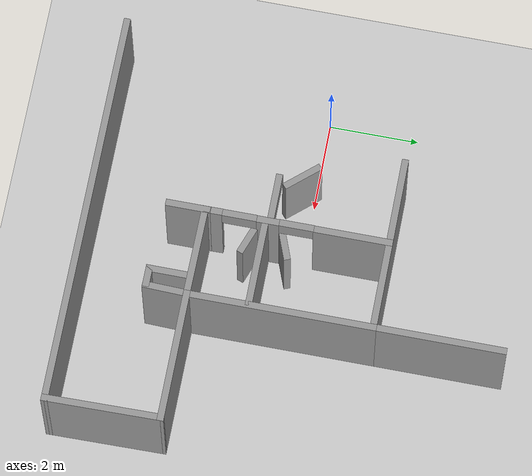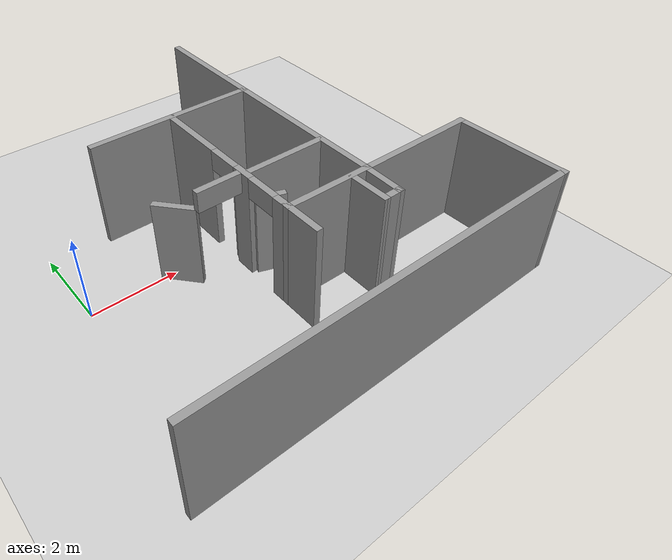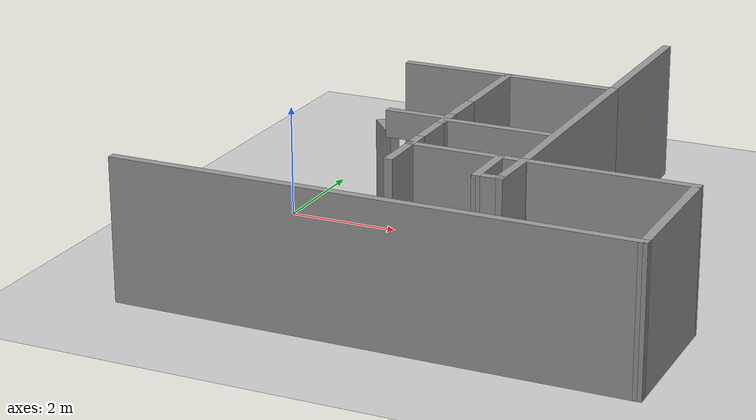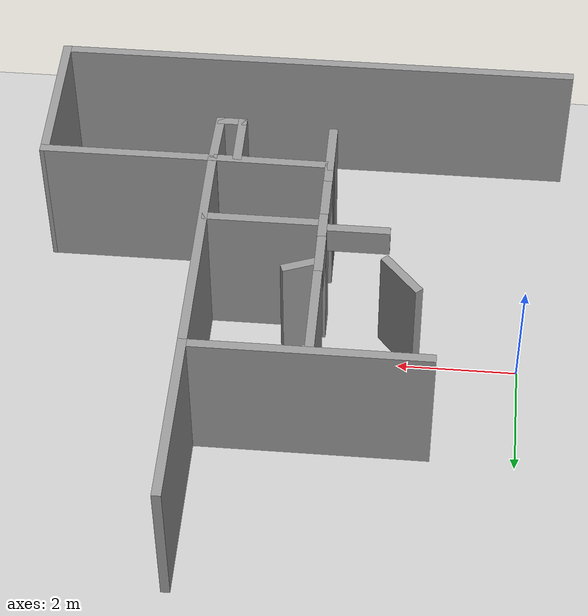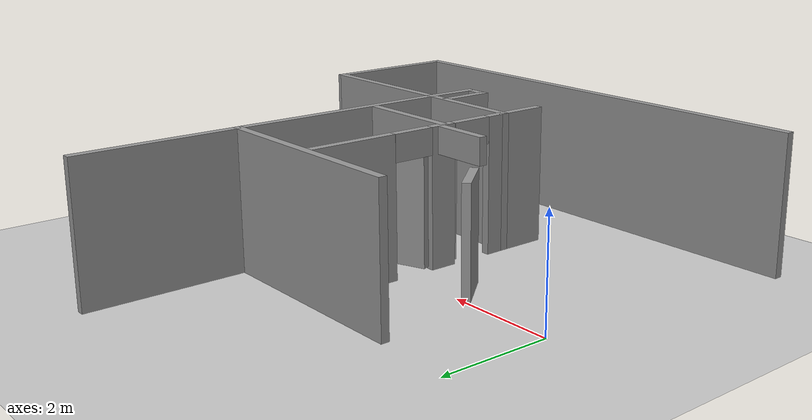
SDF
<sdf version="1.6">
 <world name="default">
  <model name="demo_clean">
   <static>1</static>
   <link name="Wall_10">
    <collision name="Wall_10_Collision">
     <geometry><box><size>3 0.15 2.5</size></box></geometry>
     <pose>0 0 1.25 0 -0 0</pose>
     <surface>
      <friction>
       <ode><mu>1.0</mu><mu2>1.0</mu2><fdir1>0 0 0</fdir1><slip1>0.0</slip1><slip2>0.0</slip2></ode>
       <torsional>
        <coefficient>1.0</coefficient>
        <patch_radius>0.0</patch_radius>
        <surface_radius>0.0</surface_radius>
        <use_patch_radius>1</use_patch_radius>
        <ode><slip>0.0</slip></ode>
       </torsional>
      </friction>
      <bounce><restitution_coefficient>0.0</restitution_coefficient><threshold>1000000.0</threshold></bounce>
      <contact>
       <collide_without_contact>0</collide_without_contact>
       <collide_without_contact_bitmask>1</collide_without_contact_bitmask>
       <collide_bitmask>1</collide_bitmask>
       <ode>
        <soft_cfm>0.0</soft_cfm>
        <soft_erp>0.2</soft_erp>
        <kp>10000000000000.0</kp>
        <kd>1.0</kd>
        <max_vel>0.01</max_vel>
        <min_depth>0.0</min_depth>
       </ode>
       <bullet>
        <split_impulse>1</split_impulse>
        <split_impulse_penetration_threshold>-0.01</split_impulse_penetration_threshold>
        <soft_cfm>0.0</soft_cfm>
        <soft_erp>0.2</soft_erp>
        <kp>10000000000000.0</kp>
        <kd>1.0</kd>
       </bullet>
      </contact>
     </surface>
    </collision>
    <visual name="Wall_10_Visual">
     <geometry><box><size>3 0.15 2.5</size></box></geometry>
     <material>
      <script><name>Gazebo/Grey</name><uri>file://media/materials/scripts/gazebo.material</uri></script>
      <ambient>1 1 1 1</ambient>
      <shader type="pixel"><normal_map>default</normal_map></shader>
     </material>
     <pose>0 0 1.25 0 -0 0</pose>
     <transparency>0.0</transparency>
    </visual>
    <pose>5.30351 3.31618 0 0 0 -1.5708</pose>
   </link>
   <link name="Wall_11">
    <collision name="Wall_11_Collision">
     <geometry><box><size>4 0.15 2.5</size></box></geometry>
     <pose>0 0 1.25 0 -0 0</pose>
     <surface>
      <friction>
       <ode><mu>1.0</mu><mu2>1.0</mu2><fdir1>0 0 0</fdir1><slip1>0.0</slip1><slip2>0.0</slip2></ode>
       <torsional>
        <coefficient>1.0</coefficient>
        <patch_radius>0.0</patch_radius>
        <surface_radius>0.0</surface_radius>
        <use_patch_radius>1</use_patch_radius>
        <ode><slip>0.0</slip></ode>
       </torsional>
      </friction>
      <bounce><restitution_coefficient>0.0</restitution_coefficient><threshold>1000000.0</threshold></bounce>
      <contact>
       <collide_without_contact>0</collide_without_contact>
       <collide_without_contact_bitmask>1</collide_without_contact_bitmask>
       <collide_bitmask>1</collide_bitmask>
       <ode>
        <soft_cfm>0.0</soft_cfm>
        <soft_erp>0.2</soft_erp>
        <kp>10000000000000.0</kp>
        <kd>1.0</kd>
        <max_vel>0.01</max_vel>
        <min_depth>0.0</min_depth>
       </ode>
       <bullet>
        <split_impulse>1</split_impulse>
        <split_impulse_penetration_threshold>-0.01</split_impulse_penetration_threshold>
        <soft_cfm>0.0</soft_cfm>
        <soft_erp>0.2</soft_erp>
        <kp>10000000000000.0</kp>
        <kd>1.0</kd>
       </bullet>
      </contact>
     </surface>
    </collision>
    <visual name="Wall_11_Visual">
     <geometry><box><size>4 0.15 2.5</size></box></geometry>
     <material>
      <script><name>Gazebo/Grey</name><uri>file://media/materials/scripts/gazebo.material</uri></script>
      <ambient>1 1 1 1</ambient>
      <shader type="pixel"><normal_map>default</normal_map></shader>
     </material>
     <pose>0 0 1.25 0 -0 0</pose>
     <transparency>0.0</transparency>
    </visual>
    <pose>3.37851 1.89118 0 0 -0 3.14159</pose>
   </link>
   <link name="Wall_13">
    <collision name="Wall_13_Collision">
     <geometry><box><size>4.25 0.15 2.5</size></box></geometry>
     <pose>0 0 1.25 0 -0 0</pose>
     <surface>
      <friction>
       <ode><mu>1.0</mu><mu2>1.0</mu2><fdir1>0 0 0</fdir1><slip1>0.0</slip1><slip2>0.0</slip2></ode>
       <torsional>
        <coefficient>1.0</coefficient>
        <patch_radius>0.0</patch_radius>
        <surface_radius>0.0</surface_radius>
        <use_patch_radius>1</use_patch_radius>
        <ode><slip>0.0</slip></ode>
       </torsional>
      </friction>
      <bounce><restitution_coefficient>0.0</restitution_coefficient><threshold>1000000.0</threshold></bounce>
      <contact>
       <collide_without_contact>0</collide_without_contact>
       <collide_without_contact_bitmask>1</collide_without_contact_bitmask>
       <collide_bitmask>1</collide_bitmask>
       <ode>
        <soft_cfm>0.0</soft_cfm>
        <soft_erp>0.2</soft_erp>
        <kp>10000000000000.0</kp>
        <kd>1.0</kd>
        <max_vel>0.01</max_vel>
        <min_depth>0.0</min_depth>
       </ode>
       <bullet>
        <split_impulse>1</split_impulse>
        <split_impulse_penetration_threshold>-0.01</split_impulse_penetration_threshold>
        <soft_cfm>0.0</soft_cfm>
        <soft_erp>0.2</soft_erp>
        <kp>10000000000000.0</kp>
        <kd>1.0</kd>
       </bullet>
      </contact>
     </surface>
    </collision>
    <visual name="Wall_13_Visual">
     <geometry><box><size>4.25 0.15 2.5</size></box></geometry>
     <material>
      <script><name>Gazebo/Grey</name><uri>file://media/materials/scripts/gazebo.material</uri></script>
      <ambient>1 1 1 1</ambient>
      <shader type="pixel"><normal_map>default</normal_map></shader>
     </material>
     <pose>0 0 1.25 0 -0 0</pose>
     <transparency>0.0</transparency>
    </visual>
    <pose>5.30351 -0.158824 0 0 0 -1.5708</pose>
   </link>
   <link name="Wall_14">
    <collision name="Wall_14_Collision">
     <geometry><box><size>3 0.15 2.5</size></box></geometry>
     <pose>0 0 1.25 0 -0 0</pose>
     <surface>
      <friction>
       <ode><mu>1.0</mu><mu2>1.0</mu2><fdir1>0 0 0</fdir1><slip1>0.0</slip1><slip2>0.0</slip2></ode>
       <torsional>
        <coefficient>1.0</coefficient>
        <patch_radius>0.0</patch_radius>
        <surface_radius>0.0</surface_radius>
        <use_patch_radius>1</use_patch_radius>
        <ode><slip>0.0</slip></ode>
       </torsional>
      </friction>
      <bounce><restitution_coefficient>0.0</restitution_coefficient><threshold>1000000.0</threshold></bounce>
      <contact>
       <collide_without_contact>0</collide_without_contact>
       <collide_without_contact_bitmask>1</collide_without_contact_bitmask>
       <collide_bitmask>1</collide_bitmask>
       <ode>
        <soft_cfm>0.0</soft_cfm>
        <soft_erp>0.2</soft_erp>
        <kp>10000000000000.0</kp>
        <kd>1.0</kd>
        <max_vel>0.01</max_vel>
        <min_depth>0.0</min_depth>
       </ode>
       <bullet>
        <split_impulse>1</split_impulse>
        <split_impulse_penetration_threshold>-0.01</split_impulse_penetration_threshold>
        <soft_cfm>0.0</soft_cfm>
        <soft_erp>0.2</soft_erp>
        <kp>10000000000000.0</kp>
        <kd>1.0</kd>
       </bullet>
      </contact>
     </surface>
    </collision>
    <visual name="Wall_14_Visual">
     <geometry><box><size>3 0.15 2.5</size></box></geometry>
     <material>
      <script><name>Gazebo/Grey</name><uri>file://media/materials/scripts/gazebo.material</uri></script>
      <ambient>1 1 1 1</ambient>
      <shader type="pixel"><normal_map>default</normal_map></shader>
     </material>
     <pose>0 0 1.25 0 -0 0</pose>
     <transparency>0.0</transparency>
    </visual>
    <pose>6.72851 -2.20882 0 0 -0 0</pose>
   </link>
   <link name="Wall_15">
    <collision name="Wall_15_Collision">
     <geometry><box><size>2.6816 0.15 2.5</size></box></geometry>
     <pose>0 0 1.25 0 -0 0</pose>
     <surface>
      <friction>
       <ode><mu>1.0</mu><mu2>1.0</mu2><fdir1>0 0 0</fdir1><slip1>0.0</slip1><slip2>0.0</slip2></ode>
       <torsional>
        <coefficient>1.0</coefficient>
        <patch_radius>0.0</patch_radius>
        <surface_radius>0.0</surface_radius>
        <use_patch_radius>1</use_patch_radius>
        <ode><slip>0.0</slip></ode>
       </torsional>
      </friction>
      <bounce><restitution_coefficient>0.0</restitution_coefficient><threshold>1000000.0</threshold></bounce>
      <contact>
       <collide_without_contact>0</collide_without_contact>
       <collide_without_contact_bitmask>1</collide_without_contact_bitmask>
       <collide_bitmask>1</collide_bitmask>
       <ode>
        <soft_cfm>0.0</soft_cfm>
        <soft_erp>0.2</soft_erp>
        <kp>10000000000000.0</kp>
        <kd>1.0</kd>
        <max_vel>0.01</max_vel>
        <min_depth>0.0</min_depth>
       </ode>
       <bullet>
        <split_impulse>1</split_impulse>
        <split_impulse_penetration_threshold>-0.01</split_impulse_penetration_threshold>
        <soft_cfm>0.0</soft_cfm>
        <soft_erp>0.2</soft_erp>
        <kp>10000000000000.0</kp>
        <kd>1.0</kd>
       </bullet>
      </contact>
     </surface>
    </collision>
    <visual name="Wall_15_Visual">
     <geometry><box><size>2.6816 0.15 2.5</size></box></geometry>
     <material>
      <script><name>Gazebo/Grey</name><uri>file://media/materials/scripts/gazebo.material</uri></script>
      <ambient>1 1 1 1</ambient>
      <shader type="pixel"><normal_map>default</normal_map></shader>
     </material>
     <pose>0 0 1.25 0 -0 0</pose>
     <transparency>0.0</transparency>
    </visual>
    <pose>8.16988 -3.47452 0 0 0 -1.55787</pose>
   </link>
   <link name="Wall_16">
    <collision name="Wall_16_Collision">
     <geometry><box><size>9 0.15 2.5</size></box></geometry>
     <pose>0 0 1.25 0 -0 0</pose>
     <surface>
      <friction>
       <ode><mu>1.0</mu><mu2>1.0</mu2><fdir1>0 0 0</fdir1><slip1>0.0</slip1><slip2>0.0</slip2></ode>
       <torsional>
        <coefficient>1.0</coefficient>
        <patch_radius>0.0</patch_radius>
        <surface_radius>0.0</surface_radius>
        <use_patch_radius>1</use_patch_radius>
        <ode><slip>0.0</slip></ode>
       </torsional>
      </friction>
      <bounce><restitution_coefficient>0.0</restitution_coefficient><threshold>1000000.0</threshold></bounce>
      <contact>
       <collide_without_contact>0</collide_without_contact>
       <collide_without_contact_bitmask>1</collide_without_contact_bitmask>
       <collide_bitmask>1</collide_bitmask>
       <ode>
        <soft_cfm>0.0</soft_cfm>
        <soft_erp>0.2</soft_erp>
        <kp>10000000000000.0</kp>
        <kd>1.0</kd>
        <max_vel>0.01</max_vel>
        <min_depth>0.0</min_depth>
       </ode>
       <bullet>
        <split_impulse>1</split_impulse>
        <split_impulse_penetration_threshold>-0.01</split_impulse_penetration_threshold>
        <soft_cfm>0.0</soft_cfm>
        <soft_erp>0.2</soft_erp>
        <kp>10000000000000.0</kp>
        <kd>1.0</kd>
       </bullet>
      </contact>
     </surface>
    </collision>
    <visual name="Wall_16_Visual">
     <geometry><box><size>9 0.15 2.5</size></box></geometry>
     <material>
      <script><name>Gazebo/Grey</name><uri>file://media/materials/scripts/gazebo.material</uri></script>
      <ambient>1 1 1 1</ambient>
      <shader type="pixel"><normal_map>default</normal_map></shader>
     </material>
     <pose>0 0 1.25 0 -0 0</pose>
     <transparency>0.0</transparency>
    </visual>
    <pose>3.76125 -4.74021 0 0 -0 3.14159</pose>
   </link>
   <link name="Wall_21_clone_0_clone_0_clone_clone_clone_clone">
    <gravity>0</gravity>
    <collision name="Wall_21_Collision">
     <geometry><box><size>0.924919 0.15 1.96033</size></box></geometry>
     <pose>0 0 1.25 0 -0 0</pose>
     <surface>
      <friction>
       <ode><mu>1.0</mu><mu2>1.0</mu2><fdir1>0 0 0</fdir1><slip1>0.0</slip1><slip2>0.0</slip2></ode>
       <torsional>
        <coefficient>1.0</coefficient>
        <patch_radius>0.0</patch_radius>
        <surface_radius>0.0</surface_radius>
        <use_patch_radius>1</use_patch_radius>
        <ode><slip>0.0</slip></ode>
       </torsional>
      </friction>
      <bounce><restitution_coefficient>0.0</restitution_coefficient><threshold>1000000.0</threshold></bounce>
      <contact>
       <collide_without_contact>0</collide_without_contact>
       <collide_without_contact_bitmask>1</collide_without_contact_bitmask>
       <collide_bitmask>1</collide_bitmask>
       <ode>
        <soft_cfm>0.0</soft_cfm>
        <soft_erp>0.2</soft_erp>
        <kp>10000000000000.0</kp>
        <kd>1.0</kd>
        <max_vel>0.01</max_vel>
        <min_depth>0.0</min_depth>
       </ode>
       <bullet>
        <split_impulse>1</split_impulse>
        <split_impulse_penetration_threshold>-0.01</split_impulse_penetration_threshold>
        <soft_cfm>0.0</soft_cfm>
        <soft_erp>0.2</soft_erp>
        <kp>10000000000000.0</kp>
        <kd>1.0</kd>
       </bullet>
      </contact>
     </surface>
    </collision>
    <visual name="Wall_21_Visual">
     <geometry><box><size>0.924919 0.15 1.96033</size></box></geometry>
     <material>
      <script><name>Gazebo/Grey</name><uri>file://media/materials/scripts/gazebo.material</uri></script>
      <ambient>1 1 1 1</ambient>
      <shader type="pixel"><normal_map>__default__</normal_map></shader>
      <diffuse>0.7 0.7 0.7 1.0</diffuse>
      <specular>0.01 0.01 0.01 1</specular>
      <emissive>0 0 0 1</emissive>
     </material>
     <pose>0 0 1.25 0 -0 0</pose>
     <transparency>0.0</transparency>
    </visual>
    <inertial>
     <inertia><ixx>0.0</ixx><iyy>0.0</iyy><izz>0.0</izz><ixy>0.0</ixy><ixz>0.0</ixz><iyz>0.0</iyz></inertia>
     <mass>1.0</mass>
    </inertial>
    <pose>2.0073 -0.280742 -0.23202 0 -0 2.28452</pose>
   </link>
   <link name="Wall_21_clone_0_clone_0_clone_clone_clone_clone_clone_clone_clone_clone">
    <gravity>0</gravity>
    <collision name="Wall_21_Collision">
     <geometry><box><size>0.663949 0.15 1.96033</size></box></geometry>
     <pose>0 0 1.25 0 -0 0</pose>
     <surface>
      <friction>
       <ode><mu>1.0</mu><mu2>1.0</mu2><fdir1>0 0 0</fdir1><slip1>0.0</slip1><slip2>0.0</slip2></ode>
       <torsional>
        <coefficient>1.0</coefficient>
        <patch_radius>0.0</patch_radius>
        <surface_radius>0.0</surface_radius>
        <use_patch_radius>1</use_patch_radius>
        <ode><slip>0.0</slip></ode>
       </torsional>
      </friction>
      <bounce><restitution_coefficient>0.0</restitution_coefficient><threshold>1000000.0</threshold></bounce>
      <contact>
       <collide_without_contact>0</collide_without_contact>
       <collide_without_contact_bitmask>1</collide_without_contact_bitmask>
       <collide_bitmask>1</collide_bitmask>
       <ode>
        <soft_cfm>0.0</soft_cfm>
        <soft_erp>0.2</soft_erp>
        <kp>10000000000000.0</kp>
        <kd>1.0</kd>
        <max_vel>0.01</max_vel>
        <min_depth>0.0</min_depth>
       </ode>
       <bullet>
        <split_impulse>1</split_impulse>
        <split_impulse_penetration_threshold>-0.01</split_impulse_penetration_threshold>
        <soft_cfm>0.0</soft_cfm>
        <soft_erp>0.2</soft_erp>
        <kp>10000000000000.0</kp>
        <kd>1.0</kd>
       </bullet>
      </contact>
     </surface>
    </collision>
    <visual name="Wall_21_Visual">
     <geometry><box><size>0.663949 0.15 1.96033</size></box></geometry>
     <material>
      <script><name>Gazebo/Grey</name><uri>file://media/materials/scripts/gazebo.material</uri></script>
      <ambient>1 1 1 1</ambient>
      <shader type="pixel"><normal_map>__default__</normal_map></shader>
      <diffuse>0.7 0.7 0.7 1.0</diffuse>
      <specular>0.01 0.01 0.01 1</specular>
      <emissive>0 0 0 1</emissive>
     </material>
     <pose>0 0 1.25 0 -0 0</pose>
     <transparency>0.0</transparency>
    </visual>
    <inertial>
     <inertia><ixx>0.0</ixx><iyy>0.0</iyy><izz>0.0</izz><ixy>0.0</ixy><ixz>0.0</ixz><iyz>0.0</iyz></inertia>
     <mass>1.0</mass>
    </inertial>
    <pose>3.68306 -1.18793 -0.23202 0 -0 2.79384</pose>
   </link>
   <link name="Wall_21_clone_0_clone_0_clone_clone_clone_clone_clone_clone_clone_clone_clone_clone">
    <gravity>0</gravity>
    <collision name="Wall_21_Collision">
     <geometry><box><size>0.663949 0.15 1.96033</size></box></geometry>
     <pose>0 0 1.25 0 -0 0</pose>
     <surface>
      <friction>
       <ode><mu>1.0</mu><mu2>1.0</mu2><fdir1>0 0 0</fdir1><slip1>0.0</slip1><slip2>0.0</slip2></ode>
       <torsional>
        <coefficient>1.0</coefficient>
        <patch_radius>0.0</patch_radius>
        <surface_radius>0.0</surface_radius>
        <use_patch_radius>1</use_patch_radius>
        <ode><slip>0.0</slip></ode>
       </torsional>
      </friction>
      <bounce><restitution_coefficient>0.0</restitution_coefficient><threshold>1000000.0</threshold></bounce>
      <contact>
       <collide_without_contact>0</collide_without_contact>
       <collide_without_contact_bitmask>1</collide_without_contact_bitmask>
       <collide_bitmask>1</collide_bitmask>
       <ode>
        <soft_cfm>0.0</soft_cfm>
        <soft_erp>0.2</soft_erp>
        <kp>10000000000000.0</kp>
        <kd>1.0</kd>
        <max_vel>0.01</max_vel>
        <min_depth>0.0</min_depth>
       </ode>
       <bullet>
        <split_impulse>1</split_impulse>
        <split_impulse_penetration_threshold>-0.01</split_impulse_penetration_threshold>
        <soft_cfm>0.0</soft_cfm>
        <soft_erp>0.2</soft_erp>
        <kp>10000000000000.0</kp>
        <kd>1.0</kd>
       </bullet>
      </contact>
     </surface>
    </collision>
    <visual name="Wall_21_Visual">
     <geometry><box><size>0.663949 0.15 1.96033</size></box></geometry>
     <material>
      <script><name>Gazebo/Grey</name><uri>file://media/materials/scripts/gazebo.material</uri></script>
      <ambient>1 1 1 1</ambient>
      <shader type="pixel"><normal_map>__default__</normal_map></shader>
      <diffuse>0.7 0.7 0.7 1.0</diffuse>
      <specular>0.01 0.01 0.01 1</specular>
      <emissive>0 0 0 1</emissive>
     </material>
     <pose>0 0 1.25 0 -0 0</pose>
     <transparency>0.0</transparency>
    </visual>
    <inertial>
     <inertia><ixx>0.0</ixx><iyy>0.0</iyy><izz>0.0</izz><ixy>0.0</ixy><ixz>0.0</ixz><iyz>0.0</iyz></inertia>
     <mass>1.0</mass>
    </inertial>
    <pose>3.65792 -0.364043 -0.23202 0 0 -2.77941</pose>
   </link>
   <link name="Wall_28_clone">
    <gravity>0</gravity>
    <collision name="Wall_28_Collision">
     <geometry><box><size>1.03415 0.15 0.476648</size></box></geometry>
     <pose>0 0 1.25 0 -0 0</pose>
     <surface>
      <friction>
       <ode><mu>1.0</mu><mu2>1.0</mu2><fdir1>0 0 0</fdir1><slip1>0.0</slip1><slip2>0.0</slip2></ode>
       <torsional>
        <coefficient>1.0</coefficient>
        <patch_radius>0.0</patch_radius>
        <surface_radius>0.0</surface_radius>
        <use_patch_radius>1</use_patch_radius>
        <ode><slip>0.0</slip></ode>
       </torsional>
      </friction>
      <bounce><restitution_coefficient>0.0</restitution_coefficient><threshold>1000000.0</threshold></bounce>
      <contact>
       <collide_without_contact>0</collide_without_contact>
       <collide_without_contact_bitmask>1</collide_without_contact_bitmask>
       <collide_bitmask>1</collide_bitmask>
       <ode>
        <soft_cfm>0.0</soft_cfm>
        <soft_erp>0.2</soft_erp>
        <kp>10000000000000.0</kp>
        <kd>1.0</kd>
        <max_vel>0.01</max_vel>
        <min_depth>0.0</min_depth>
       </ode>
       <bullet>
        <split_impulse>1</split_impulse>
        <split_impulse_penetration_threshold>-0.01</split_impulse_penetration_threshold>
        <soft_cfm>0.0</soft_cfm>
        <soft_erp>0.2</soft_erp>
        <kp>10000000000000.0</kp>
        <kd>1.0</kd>
       </bullet>
      </contact>
     </surface>
    </collision>
    <visual name="Wall_28_Visual">
     <geometry><box><size>1.03415 0.15 0.476648</size></box></geometry>
     <material>
      <script><name>Gazebo/Grey</name><uri>file://media/materials/scripts/gazebo.material</uri></script>
      <ambient>1 1 1 1</ambient>
      <shader type="pixel"><normal_map>__default__</normal_map></shader>
      <diffuse>0.7 0.7 0.7 1.0</diffuse>
      <specular>0.01 0.01 0.01 1</specular>
      <emissive>0 0 0 1</emissive>
     </material>
     <pose>0 0 1.25 0 -0 0</pose>
     <transparency>0.0</transparency>
    </visual>
    <inertial>
     <inertia><ixx>0.0</ixx><iyy>0.0</iyy><izz>0.0</izz><ixy>0.0</ixy><ixz>0.0</ixz><iyz>0.0</iyz></inertia>
     <mass>1.0</mass>
    </inertial>
    <pose>2.7476 -0.745235 1.01168 0 -0 0</pose>
   </link>
   <link name="Wall_28_clone_clone_clone_clone">
    <gravity>0</gravity>
    <collision name="Wall_28_Collision">
     <geometry><box><size>0.765639 0.15 0.476648</size></box></geometry>
     <pose>0 0 1.25 0 -0 0</pose>
     <surface>
      <friction>
       <ode><mu>1.0</mu><mu2>1.0</mu2><fdir1>0 0 0</fdir1><slip1>0.0</slip1><slip2>0.0</slip2></ode>
       <torsional>
        <coefficient>1.0</coefficient>
        <patch_radius>0.0</patch_radius>
        <surface_radius>0.0</surface_radius>
        <use_patch_radius>1</use_patch_radius>
        <ode><slip>0.0</slip></ode>
       </torsional>
      </friction>
      <bounce><restitution_coefficient>0.0</restitution_coefficient><threshold>1000000.0</threshold></bounce>
      <contact>
       <collide_without_contact>0</collide_without_contact>
       <collide_without_contact_bitmask>1</collide_without_contact_bitmask>
       <collide_bitmask>1</collide_bitmask>
       <ode>
        <soft_cfm>0.0</soft_cfm>
        <soft_erp>0.2</soft_erp>
        <kp>10000000000000.0</kp>
        <kd>1.0</kd>
        <max_vel>0.01</max_vel>
        <min_depth>0.0</min_depth>
       </ode>
       <bullet>
        <split_impulse>1</split_impulse>
        <split_impulse_penetration_threshold>-0.01</split_impulse_penetration_threshold>
        <soft_cfm>0.0</soft_cfm>
        <soft_erp>0.2</soft_erp>
        <kp>10000000000000.0</kp>
        <kd>1.0</kd>
       </bullet>
      </contact>
     </surface>
    </collision>
    <visual name="Wall_28_Visual">
     <geometry><box><size>0.765639 0.15 0.476648</size></box></geometry>
     <material>
      <script><name>Gazebo/Grey</name><uri>file://media/materials/scripts/gazebo.material</uri></script>
      <ambient>1 1 1 1</ambient>
      <shader type="pixel"><normal_map>__default__</normal_map></shader>
     </material>
     <pose>0 0 1.25 0 -0 0</pose>
     <transparency>0.0</transparency>
    </visual>
    <inertial>
     <inertia><ixx>0.0</ixx><iyy>0.0</iyy><izz>0.0</izz><ixy>0.0</ixy><ixz>0.0</ixz><iyz>0.0</iyz></inertia>
     <mass>1.0</mass>
    </inertial>
    <pose>3.33099 -1.42343 1.01168 0 0 -1.57004</pose>
   </link>
   <link name="Wall_28_clone_clone_clone_clone_clone">
    <gravity>0</gravity>
    <collision name="Wall_28_Collision">
     <geometry><box><size>0.765639 0.15 0.476648</size></box></geometry>
     <pose>0 0 1.25 0 -0 0</pose>
     <surface>
      <friction>
       <ode><mu>1.0</mu><mu2>1.0</mu2><fdir1>0 0 0</fdir1><slip1>0.0</slip1><slip2>0.0</slip2></ode>
       <torsional>
        <coefficient>1.0</coefficient>
        <patch_radius>0.0</patch_radius>
        <surface_radius>0.0</surface_radius>
        <use_patch_radius>1</use_patch_radius>
        <ode><slip>0.0</slip></ode>
       </torsional>
      </friction>
      <bounce><restitution_coefficient>0.0</restitution_coefficient><threshold>1000000.0</threshold></bounce>
      <contact>
       <collide_without_contact>0</collide_without_contact>
       <collide_without_contact_bitmask>1</collide_without_contact_bitmask>
       <collide_bitmask>1</collide_bitmask>
       <ode>
        <soft_cfm>0.0</soft_cfm>
        <soft_erp>0.2</soft_erp>
        <kp>10000000000000.0</kp>
        <kd>1.0</kd>
        <max_vel>0.01</max_vel>
        <min_depth>0.0</min_depth>
       </ode>
       <bullet>
        <split_impulse>1</split_impulse>
        <split_impulse_penetration_threshold>-0.01</split_impulse_penetration_threshold>
        <soft_cfm>0.0</soft_cfm>
        <soft_erp>0.2</soft_erp>
        <kp>10000000000000.0</kp>
        <kd>1.0</kd>
       </bullet>
      </contact>
     </surface>
    </collision>
    <visual name="Wall_28_Visual">
     <geometry><box><size>0.765639 0.15 0.476648</size></box></geometry>
     <material>
      <script><name>Gazebo/Grey</name><uri>file://media/materials/scripts/gazebo.material</uri></script>
      <ambient>1 1 1 1</ambient>
      <shader type="pixel"><normal_map>__default__</normal_map></shader>
     </material>
     <pose>0 0 1.25 0 -0 0</pose>
     <transparency>0.0</transparency>
    </visual>
    <inertial>
     <inertia><ixx>0.0</ixx><iyy>0.0</iyy><izz>0.0</izz><ixy>0.0</ixy><ixz>0.0</ixz><iyz>0.0</iyz></inertia>
     <mass>1.0</mass>
    </inertial>
    <pose>3.33099 -0.160303 1.01168 0 0 -1.57004</pose>
   </link>
   <link name="Wall_30">
    <collision name="Wall_30_Collision">
     <geometry><box><size>0.5 0.15 2.5</size></box></geometry>
     <pose>0 0 1.25 0 -0 0</pose>
     <surface>
      <friction>
       <ode><mu>1.0</mu><mu2>1.0</mu2><fdir1>0 0 0</fdir1><slip1>0.0</slip1><slip2>0.0</slip2></ode>
       <torsional>
        <coefficient>1.0</coefficient>
        <patch_radius>0.0</patch_radius>
        <surface_radius>0.0</surface_radius>
        <use_patch_radius>1</use_patch_radius>
        <ode><slip>0.0</slip></ode>
       </torsional>
      </friction>
      <bounce><restitution_coefficient>0.0</restitution_coefficient><threshold>1000000.0</threshold></bounce>
      <contact>
       <collide_without_contact>0</collide_without_contact>
       <collide_without_contact_bitmask>1</collide_without_contact_bitmask>
       <collide_bitmask>1</collide_bitmask>
       <ode>
        <soft_cfm>0.0</soft_cfm>
        <soft_erp>0.2</soft_erp>
        <kp>10000000000000.0</kp>
        <kd>1.0</kd>
        <max_vel>0.01</max_vel>
        <min_depth>0.0</min_depth>
       </ode>
       <bullet>
        <split_impulse>1</split_impulse>
        <split_impulse_penetration_threshold>-0.01</split_impulse_penetration_threshold>
        <soft_cfm>0.0</soft_cfm>
        <soft_erp>0.2</soft_erp>
        <kp>10000000000000.0</kp>
        <kd>1.0</kd>
       </bullet>
      </contact>
     </surface>
    </collision>
    <visual name="Wall_30_Visual">
     <geometry><box><size>0.5 0.15 2.5</size></box></geometry>
     <material>
      <script><name>Gazebo/Grey</name><uri>file://media/materials/scripts/gazebo.material</uri></script>
      <ambient>1 1 1 1</ambient>
      <shader type="pixel"><normal_map>default</normal_map></shader>
     </material>
     <pose>0 0 1.25 0 -0 0</pose>
     <transparency>0.0</transparency>
    </visual>
    <pose>3.33603 -0.791518 0 0 0 -1.5708</pose>
   </link>
   <link name="Wall_33">
    <collision name="Wall_33_Collision">
     <geometry><box><size>2 0.15 2.5</size></box></geometry>
     <pose>0 0 1.25 0 -0 0</pose>
     <surface>
      <friction>
       <ode><mu>1.0</mu><mu2>1.0</mu2><fdir1>0 0 0</fdir1><slip1>0.0</slip1><slip2>0.0</slip2></ode>
       <torsional>
        <coefficient>1.0</coefficient>
        <patch_radius>0.0</patch_radius>
        <surface_radius>0.0</surface_radius>
        <use_patch_radius>1</use_patch_radius>
        <ode><slip>0.0</slip></ode>
       </torsional>
      </friction>
      <bounce><restitution_coefficient>0.0</restitution_coefficient><threshold>1000000.0</threshold></bounce>
      <contact>
       <collide_without_contact>0</collide_without_contact>
       <collide_without_contact_bitmask>1</collide_without_contact_bitmask>
       <collide_bitmask>1</collide_bitmask>
       <ode>
        <soft_cfm>0.0</soft_cfm>
        <soft_erp>0.2</soft_erp>
        <kp>10000000000000.0</kp>
        <kd>1.0</kd>
        <max_vel>0.01</max_vel>
        <min_depth>0.0</min_depth>
       </ode>
       <bullet>
        <split_impulse>1</split_impulse>
        <split_impulse_penetration_threshold>-0.01</split_impulse_penetration_threshold>
        <soft_cfm>0.0</soft_cfm>
        <soft_erp>0.2</soft_erp>
        <kp>10000000000000.0</kp>
        <kd>1.0</kd>
       </bullet>
      </contact>
     </surface>
    </collision>
    <visual name="Wall_33_Visual">
     <geometry><box><size>2 0.15 2.5</size></box></geometry>
     <material>
      <script><name>Gazebo/Grey</name><uri>file://media/materials/scripts/gazebo.material</uri></script>
      <ambient>1 1 1 1</ambient>
      <shader type="pixel"><normal_map>default</normal_map></shader>
     </material>
     <pose>0 0 1.25 0 -0 0</pose>
     <transparency>0.0</transparency>
    </visual>
    <pose>4.32187 -0.846909 0 0 -0 3.14159</pose>
   </link>
   <link name="Wall_35">
    <collision name="Wall_35_Collision">
     <geometry><box><size>2.12444 0.15 2.5</size></box></geometry>
     <pose>0 0 1.25 0 -0 0</pose>
     <surface>
      <friction>
       <ode><mu>1.0</mu><mu2>1.0</mu2><fdir1>0 0 0</fdir1><slip1>0.0</slip1><slip2>0.0</slip2></ode>
       <torsional>
        <coefficient>1.0</coefficient>
        <patch_radius>0.0</patch_radius>
        <surface_radius>0.0</surface_radius>
        <use_patch_radius>1</use_patch_radius>
        <ode><slip>0.0</slip></ode>
       </torsional>
      </friction>
      <bounce><restitution_coefficient>0.0</restitution_coefficient><threshold>1000000.0</threshold></bounce>
      <contact>
       <collide_without_contact>0</collide_without_contact>
       <collide_without_contact_bitmask>1</collide_without_contact_bitmask>
       <collide_bitmask>1</collide_bitmask>
       <ode>
        <soft_cfm>0.0</soft_cfm>
        <soft_erp>0.2</soft_erp>
        <kp>10000000000000.0</kp>
        <kd>1.0</kd>
        <max_vel>0.01</max_vel>
        <min_depth>0.0</min_depth>
       </ode>
       <bullet>
        <split_impulse>1</split_impulse>
        <split_impulse_penetration_threshold>-0.01</split_impulse_penetration_threshold>
        <soft_cfm>0.0</soft_cfm>
        <soft_erp>0.2</soft_erp>
        <kp>10000000000000.0</kp>
        <kd>1.0</kd>
       </bullet>
      </contact>
     </surface>
    </collision>
    <visual name="Wall_35_Visual">
     <geometry><box><size>2.12444 0.15 2.5</size></box></geometry>
     <material>
      <script><name>Gazebo/Grey</name><uri>file://media/materials/scripts/gazebo.material</uri></script>
      <ambient>1 1 1 1</ambient>
      <shader type="pixel"><normal_map>default</normal_map></shader>
     </material>
     <pose>0 0 1.25 0 -0 0</pose>
     <transparency>0.0</transparency>
    </visual>
    <pose>4.31686 -2.19973 0 0 -0 3.13123</pose>
   </link>
   <link name="Wall_40">
    <collision name="Wall_40_Collision">
     <geometry><box><size>1 0.15 2.5</size></box></geometry>
     <pose>0 0 1.25 0 -0 0</pose>
     <surface>
      <friction>
       <ode><mu>1.0</mu><mu2>1.0</mu2><fdir1>0 0 0</fdir1><slip1>0.0</slip1><slip2>0.0</slip2></ode>
       <torsional>
        <coefficient>1.0</coefficient>
        <patch_radius>0.0</patch_radius>
        <surface_radius>0.0</surface_radius>
        <use_patch_radius>1</use_patch_radius>
        <ode><slip>0.0</slip></ode>
       </torsional>
      </friction>
      <bounce><restitution_coefficient>0.0</restitution_coefficient><threshold>1000000.0</threshold></bounce>
      <contact>
       <collide_without_contact>0</collide_without_contact>
       <collide_without_contact_bitmask>1</collide_without_contact_bitmask>
       <collide_bitmask>1</collide_bitmask>
       <ode>
        <soft_cfm>0.0</soft_cfm>
        <soft_erp>0.2</soft_erp>
        <kp>10000000000000.0</kp>
        <kd>1.0</kd>
        <max_vel>0.01</max_vel>
        <min_depth>0.0</min_depth>
       </ode>
       <bullet>
        <split_impulse>1</split_impulse>
        <split_impulse_penetration_threshold>-0.01</split_impulse_penetration_threshold>
        <soft_cfm>0.0</soft_cfm>
        <soft_erp>0.2</soft_erp>
        <kp>10000000000000.0</kp>
        <kd>1.0</kd>
       </bullet>
      </contact>
     </surface>
    </collision>
    <visual name="Wall_40_Visual">
     <geometry><box><size>1 0.15 2.5</size></box></geometry>
     <material>
      <script><name>Gazebo/Grey</name><uri>file://media/materials/scripts/gazebo.material</uri></script>
      <ambient>1 1 1 1</ambient>
      <shader type="pixel"><normal_map>default</normal_map></shader>
     </material>
     <pose>0 0 1.25 0 -0 0</pose>
     <transparency>0.0</transparency>
    </visual>
    <pose>4.89119 -2.69073 0 0 0 -1.57324</pose>
   </link>
   <link name="Wall_41">
    <collision name="Wall_41_Collision">
     <geometry><box><size>0.5 0.15 2.5</size></box></geometry>
     <pose>0 0 1.25 0 -0 0</pose>
     <surface>
      <friction>
       <ode><mu>1.0</mu><mu2>1.0</mu2><fdir1>0 0 0</fdir1><slip1>0.0</slip1><slip2>0.0</slip2></ode>
       <torsional>
        <coefficient>1.0</coefficient>
        <patch_radius>0.0</patch_radius>
        <surface_radius>0.0</surface_radius>
        <use_patch_radius>1</use_patch_radius>
        <ode><slip>0.0</slip></ode>
       </torsional>
      </friction>
      <bounce><restitution_coefficient>0.0</restitution_coefficient><threshold>1000000.0</threshold></bounce>
      <contact>
       <collide_without_contact>0</collide_without_contact>
       <collide_without_contact_bitmask>1</collide_without_contact_bitmask>
       <collide_bitmask>1</collide_bitmask>
       <ode>
        <soft_cfm>0.0</soft_cfm>
        <soft_erp>0.2</soft_erp>
        <kp>10000000000000.0</kp>
        <kd>1.0</kd>
        <max_vel>0.01</max_vel>
        <min_depth>0.0</min_depth>
       </ode>
       <bullet>
        <split_impulse>1</split_impulse>
        <split_impulse_penetration_threshold>-0.01</split_impulse_penetration_threshold>
        <soft_cfm>0.0</soft_cfm>
        <soft_erp>0.2</soft_erp>
        <kp>10000000000000.0</kp>
        <kd>1.0</kd>
       </bullet>
      </contact>
     </surface>
    </collision>
    <visual name="Wall_41_Visual">
     <geometry><box><size>0.5 0.15 2.5</size></box></geometry>
     <material>
      <script><name>Gazebo/Grey</name><uri>file://media/materials/scripts/gazebo.material</uri></script>
      <ambient>1 1 1 1</ambient>
      <shader type="pixel"><normal_map>default</normal_map></shader>
     </material>
     <pose>0 0 1.25 0 -0 0</pose>
     <transparency>0.0</transparency>
    </visual>
    <pose>5.06619 -3.11573 0 0 -0 0</pose>
   </link>
   <link name="Wall_42">
    <collision name="Wall_42_Collision">
     <geometry><box><size>1.05905 0.15 2.5</size></box></geometry>
     <pose>0 0 1.25 0 -0 0</pose>
     <surface>
      <friction>
       <ode><mu>1.0</mu><mu2>1.0</mu2><fdir1>0 0 0</fdir1><slip1>0.0</slip1><slip2>0.0</slip2></ode>
       <torsional>
        <coefficient>1.0</coefficient>
        <patch_radius>0.0</patch_radius>
        <surface_radius>0.0</surface_radius>
        <use_patch_radius>1</use_patch_radius>
        <ode><slip>0.0</slip></ode>
       </torsional>
      </friction>
      <bounce><restitution_coefficient>0.0</restitution_coefficient><threshold>1000000.0</threshold></bounce>
      <contact>
       <collide_without_contact>0</collide_without_contact>
       <collide_without_contact_bitmask>1</collide_without_contact_bitmask>
       <collide_bitmask>1</collide_bitmask>
       <ode>
        <soft_cfm>0.0</soft_cfm>
        <soft_erp>0.2</soft_erp>
        <kp>10000000000000.0</kp>
        <kd>1.0</kd>
        <max_vel>0.01</max_vel>
        <min_depth>0.0</min_depth>
       </ode>
       <bullet>
        <split_impulse>1</split_impulse>
        <split_impulse_penetration_threshold>-0.01</split_impulse_penetration_threshold>
        <soft_cfm>0.0</soft_cfm>
        <soft_erp>0.2</soft_erp>
        <kp>10000000000000.0</kp>
        <kd>1.0</kd>
       </bullet>
      </contact>
     </surface>
    </collision>
    <visual name="Wall_42_Visual">
     <geometry><box><size>1.05905 0.15 2.5</size></box></geometry>
     <material>
      <script><name>Gazebo/Grey</name><uri>file://media/materials/scripts/gazebo.material</uri></script>
      <ambient>1 1 1 1</ambient>
      <shader type="pixel"><normal_map>default</normal_map></shader>
     </material>
     <pose>0 0 1.25 0 -0 0</pose>
     <transparency>0.0</transparency>
    </visual>
    <pose>5.28364 -2.66264 0 0 -0 1.53905</pose>
   </link>
   <link name="Wall_46">
    <collision name="Wall_46_Collision">
     <geometry><box><size>1.75 0.15 2.5</size></box></geometry>
     <pose>0 0 1.25 0 -0 0</pose>
     <surface>
      <friction>
       <ode><mu>1.0</mu><mu2>1.0</mu2><fdir1>0 0 0</fdir1><slip1>0.0</slip1><slip2>0.0</slip2></ode>
       <torsional>
        <coefficient>1.0</coefficient>
        <patch_radius>0.0</patch_radius>
        <surface_radius>0.0</surface_radius>
        <use_patch_radius>1</use_patch_radius>
        <ode><slip>0.0</slip></ode>
       </torsional>
      </friction>
      <bounce><restitution_coefficient>0.0</restitution_coefficient><threshold>1000000.0</threshold></bounce>
      <contact>
       <collide_without_contact>0</collide_without_contact>
       <collide_without_contact_bitmask>1</collide_without_contact_bitmask>
       <collide_bitmask>1</collide_bitmask>
       <ode>
        <soft_cfm>0.0</soft_cfm>
        <soft_erp>0.2</soft_erp>
        <kp>10000000000000.0</kp>
        <kd>1.0</kd>
        <max_vel>0.01</max_vel>
        <min_depth>0.0</min_depth>
       </ode>
       <bullet>
        <split_impulse>1</split_impulse>
        <split_impulse_penetration_threshold>-0.01</split_impulse_penetration_threshold>
        <soft_cfm>0.0</soft_cfm>
        <soft_erp>0.2</soft_erp>
        <kp>10000000000000.0</kp>
        <kd>1.0</kd>
       </bullet>
      </contact>
     </surface>
    </collision>
    <visual name="Wall_46_Visual">
     <geometry><box><size>1.75 0.15 2.5</size></box></geometry>
     <material>
      <script><name>Gazebo/Grey</name><uri>file://media/materials/scripts/gazebo.material</uri></script>
      <ambient>1 1 1 1</ambient>
      <shader type="pixel"><normal_map>default</normal_map></shader>
     </material>
     <pose>0 0 1.25 0 -0 0</pose>
     <transparency>0.0</transparency>
    </visual>
    <pose>3.33603 1.08929 0 0 0 -1.5708</pose>
   </link>
   <link name="Wall_48">
    <collision name="Wall_48_Collision">
     <geometry><box><size>0.15 0.15 2.5</size></box></geometry>
     <pose>0 0 1.25 0 -0 0</pose>
     <surface>
      <friction>
       <ode><mu>1.0</mu><mu2>1.0</mu2><fdir1>0 0 0</fdir1><slip1>0.0</slip1><slip2>0.0</slip2></ode>
       <torsional>
        <coefficient>1.0</coefficient>
        <patch_radius>0.0</patch_radius>
        <surface_radius>0.0</surface_radius>
        <use_patch_radius>1</use_patch_radius>
        <ode><slip>0.0</slip></ode>
       </torsional>
      </friction>
      <bounce><restitution_coefficient>0.0</restitution_coefficient><threshold>1000000.0</threshold></bounce>
      <contact>
       <collide_without_contact>0</collide_without_contact>
       <collide_without_contact_bitmask>1</collide_without_contact_bitmask>
       <collide_bitmask>1</collide_bitmask>
       <ode>
        <soft_cfm>0.0</soft_cfm>
        <soft_erp>0.2</soft_erp>
        <kp>10000000000000.0</kp>
        <kd>1.0</kd>
        <max_vel>0.01</max_vel>
        <min_depth>0.0</min_depth>
       </ode>
       <bullet>
        <split_impulse>1</split_impulse>
        <split_impulse_penetration_threshold>-0.01</split_impulse_penetration_threshold>
        <soft_cfm>0.0</soft_cfm>
        <soft_erp>0.2</soft_erp>
        <kp>10000000000000.0</kp>
        <kd>1.0</kd>
       </bullet>
      </contact>
     </surface>
    </collision>
    <visual name="Wall_48_Visual">
     <geometry><box><size>0.15 0.15 2.5</size></box></geometry>
     <material>
      <script><name>Gazebo/Grey</name><uri>file://media/materials/scripts/gazebo.material</uri></script>
      <ambient>1 1 1 1</ambient>
      <shader type="pixel"><normal_map>default</normal_map></shader>
     </material>
     <pose>0 0 1.25 0 -0 0</pose>
     <transparency>0.0</transparency>
    </visual>
    <pose>3.33073 -2.13943 0 0 -0 0</pose>
   </link>
   <link name="Wall_49">
    <collision name="Wall_49_Collision">
     <geometry><box><size>1 0.15 2.5</size></box></geometry>
     <pose>0 0 1.25 0 -0 0</pose>
     <surface>
      <friction>
       <ode><mu>1.0</mu><mu2>1.0</mu2><fdir1>0 0 0</fdir1><slip1>0.0</slip1><slip2>0.0</slip2></ode>
       <torsional>
        <coefficient>1.0</coefficient>
        <patch_radius>0.0</patch_radius>
        <surface_radius>0.0</surface_radius>
        <use_patch_radius>1</use_patch_radius>
        <ode><slip>0.0</slip></ode>
       </torsional>
      </friction>
      <bounce><restitution_coefficient>0.0</restitution_coefficient><threshold>1000000.0</threshold></bounce>
      <contact>
       <collide_without_contact>0</collide_without_contact>
       <collide_without_contact_bitmask>1</collide_without_contact_bitmask>
       <collide_bitmask>1</collide_bitmask>
       <ode>
        <soft_cfm>0.0</soft_cfm>
        <soft_erp>0.2</soft_erp>
        <kp>10000000000000.0</kp>
        <kd>1.0</kd>
        <max_vel>0.01</max_vel>
        <min_depth>0.0</min_depth>
       </ode>
       <bullet>
        <split_impulse>1</split_impulse>
        <split_impulse_penetration_threshold>-0.01</split_impulse_penetration_threshold>
        <soft_cfm>0.0</soft_cfm>
        <soft_erp>0.2</soft_erp>
        <kp>10000000000000.0</kp>
        <kd>1.0</kd>
       </bullet>
      </contact>
     </surface>
    </collision>
    <visual name="Wall_49_Visual">
     <geometry><box><size>1 0.15 2.5</size></box></geometry>
     <material>
      <script><name>Gazebo/Grey</name><uri>file://media/materials/scripts/gazebo.material</uri></script>
      <ambient>1 1 1 1</ambient>
      <shader type="pixel"><normal_map>default</normal_map></shader>
     </material>
     <pose>0 0 1.25 0 -0 0</pose>
     <transparency>0.0</transparency>
    </visual>
    <pose>3.33073 -2.56443 0 0 0 -1.5708</pose>
   </link>
   <link name="Wall_51">
    <collision name="Wall_51_Collision">
     <geometry><box><size>0.412102 0.15 2.5</size></box></geometry>
     <pose>0 0 1.25 0 -0 0</pose>
     <surface>
      <friction>
       <ode><mu>1.0</mu><mu2>1.0</mu2><fdir1>0 0 0</fdir1><slip1>0.0</slip1><slip2>0.0</slip2></ode>
       <torsional>
        <coefficient>1.0</coefficient>
        <patch_radius>0.0</patch_radius>
        <surface_radius>0.0</surface_radius>
        <use_patch_radius>1</use_patch_radius>
        <ode><slip>0.0</slip></ode>
       </torsional>
      </friction>
      <bounce><restitution_coefficient>0.0</restitution_coefficient><threshold>1000000.0</threshold></bounce>
      <contact>
       <collide_without_contact>0</collide_without_contact>
       <collide_without_contact_bitmask>1</collide_without_contact_bitmask>
       <collide_bitmask>1</collide_bitmask>
       <ode>
        <soft_cfm>0.0</soft_cfm>
        <soft_erp>0.2</soft_erp>
        <kp>10000000000000.0</kp>
        <kd>1.0</kd>
        <max_vel>0.01</max_vel>
        <min_depth>0.0</min_depth>
       </ode>
       <bullet>
        <split_impulse>1</split_impulse>
        <split_impulse_penetration_threshold>-0.01</split_impulse_penetration_threshold>
        <soft_cfm>0.0</soft_cfm>
        <soft_erp>0.2</soft_erp>
        <kp>10000000000000.0</kp>
        <kd>1.0</kd>
       </bullet>
      </contact>
     </surface>
    </collision>
    <visual name="Wall_51_Visual">
     <geometry><box><size>0.412102 0.15 2.5</size></box></geometry>
     <material>
      <script><name>Gazebo/Grey</name><uri>file://media/materials/scripts/gazebo.material</uri></script>
      <ambient>1 1 1 1</ambient>
      <shader type="pixel"><normal_map>default</normal_map></shader>
     </material>
     <pose>0 0 1.25 0 -0 0</pose>
     <transparency>0.0</transparency>
    </visual>
    <pose>3.3292 -2.00839 0 0 0 -1.55914</pose>
   </link>
  </model>
  <include><uri>model://ground_plane</uri><name>ground_plane</name><static>1</static></include>
 </world>
</sdf>
